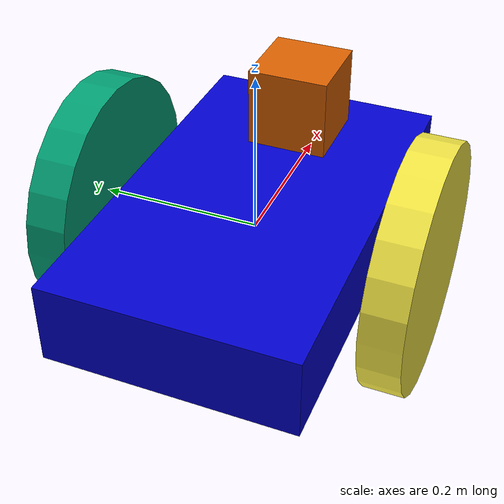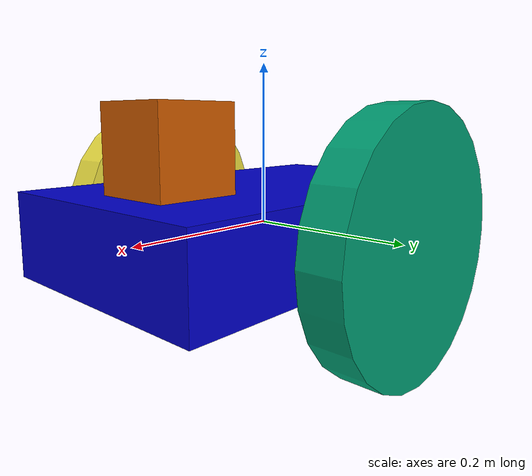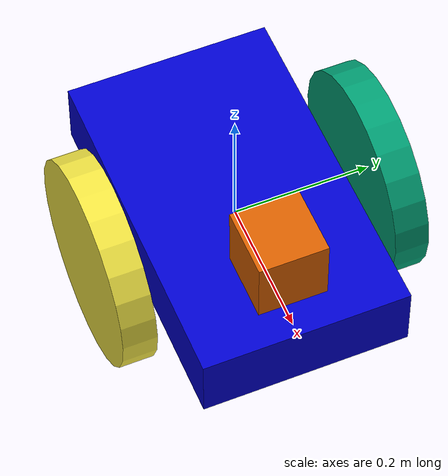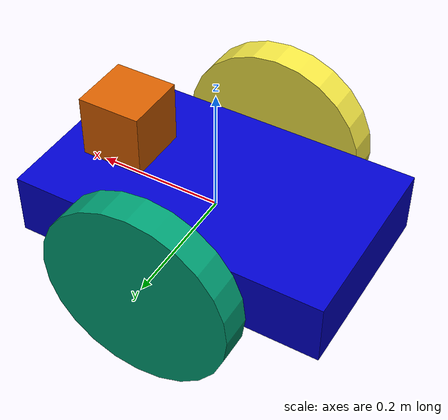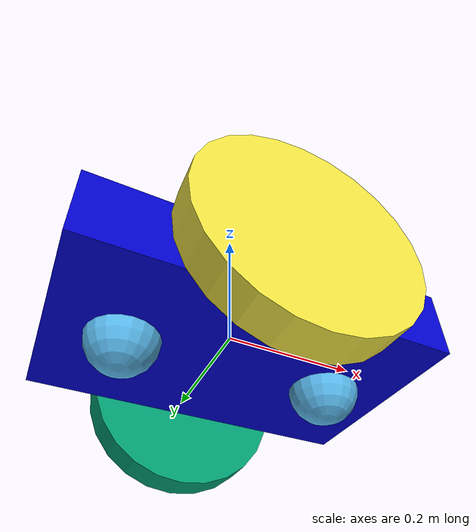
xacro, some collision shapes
<?xml version='1.0'?>

<robot name="my_robot" xmlns:xacro="http://www.ros.org/wiki/xacro">
<xacro:include filename="$(find my_robot)/urdf/my_robot.gazebo" />

  <material name="blue">
     <color rgba="0 0 0.8 1"/>
  </material>

  <link name="robot_footprint"></link>

  <joint name="robot_footprint_joint" type="fixed">
    <origin xyz="0 0 0" rpy="0 0 0" />
    <parent link="robot_footprint"/>
    <child link="chassis" />
  </joint>

  <link name='chassis'>
    <pose>0 0 0.1 0 0 0</pose>

    <inertial>
      <mass value="15.0"/>
      <origin xyz="0.0 0 0" rpy=" 0 0 0"/>
      <inertia
          ixx="0.1" ixy="0" ixz="0"
          iyy="0.1" iyz="0"
          izz="0.1"
      />
    </inertial>

    <collision name='collision'>
      <origin xyz="0 0 0" rpy=" 0 0 0"/>
      <geometry>
        <box size=".5 .3 .1"/>
      </geometry>
    </collision>

    <visual name='chassis_visual'>
      <origin xyz="0 0 0" rpy=" 0 0 0"/>
      <geometry>
        <box size=".5 .3 .1"/>
      </geometry>
      <material name="blue"/>
    </visual>

    <collision name='back_caster_collision'>
      <origin xyz="-0.15 0 -0.05" rpy=" 0 0 0"/>
      <geometry>
        <sphere radius="0.0499"/>
      </geometry>
    </collision>

    <visual name='back_caster_visual'>
      <origin xyz="-0.15 0 -0.05" rpy=" 0 0 0"/>
      <geometry>
        <sphere radius="0.05"/>
      </geometry>
    </visual>

    <collision name='front_caster_collision'>
      <origin xyz="0.15 0 -0.05" rpy=" 0 0 0"/>
      <geometry>
        <sphere radius="0.0499"/>
      </geometry>
    </collision>

    <visual name='front_caster_visual'>
      <origin xyz="0.15 0 -0.05" rpy=" 0 0 0"/>
      <geometry>
        <sphere radius="0.05"/>
      </geometry>
    </visual>

  </link>

  <link name='left_wheel'>
    <visual name='left_wheel_visual'>
      <origin xyz="0 0 0" rpy=" 0 1.5707 1.5707"/>
      <geometry>
        <cylinder length="0.05" radius="0.15"/>
      </geometry>
    </visual>

    <collision name='left_wheel_collision'>
      <origin xyz="0 0 0" rpy=" 0 1.5707 1.5707"/>
      <geometry>
        <cylinder length="0.05" radius="0.15"/>
      </geometry>
    </collision>

    <inertial>
      <mass value="5.0"/>
      <origin xyz="0.0 0 0" rpy=" 0 1.5707 1.5707"/>
      <inertia
          ixx="0.1" ixy="0" ixz="0"
          iyy="0.1" iyz="0"
          izz="0.1"
      />
    </inertial>
  </link>

  <joint type="continuous" name="left_wheel_hinge">
    <origin xyz="0 0.2 0" rpy="0 0 0"/>
    <child link="left_wheel"/>
    <parent link="chassis"/>
    <axis xyz="0 1 0" rpy="0 0 0"/>
    <limit effort="10000" velocity="1000"/>
    <dynamics damping="1.0" friction="1.0"/>
  </joint>

  <link name='right_wheel'>
    <visual name='right_wheel_visual'>
      <origin xyz="0 0 0" rpy=" 0 1.5707 1.5707"/>
      <geometry>
        <cylinder length="0.05" radius="0.15"/>
      </geometry>
    </visual>

    <collision name='right_wheel_collision'>
      <origin xyz="0 0 0" rpy=" 0 1.5707 1.5707"/>
      <geometry>
        <cylinder length="0.05" radius="0.15"/>
      </geometry>
    </collision>

    <inertial>
      <mass value="5.0"/>
      <origin xyz="0.0 0 0" rpy=" 0 1.5707 1.5707"/>
      <inertia
          ixx="0.1" ixy="0" ixz="0"
          iyy="0.1" iyz="0"
          izz="0.1"
      />
    </inertial>
  </link>

  <joint type="continuous" name="right_wheel_hinge">
    <origin xyz="0 -0.2 0" rpy="0 0 0"/>
    <child link="right_wheel"/>
    <parent link="chassis"/>
    <axis xyz="0 1 0" rpy="0 0 0"/>
    <limit effort="10000" velocity="1000"/>
    <dynamics damping="1.0" friction="1.0"/>
  </joint>

  <link name='camera'>
    <visual name='camera_visual'>
      <origin xyz="0 0 0" rpy=" 0 0 0"/>
      <geometry>
        <box size=".05 .05 .05"/>
      </geometry>
    </visual>

    <collision name='camera_collision'>
      <origin xyz="0 0 0" rpy=" 0 0 0"/>
      <geometry>
        <box size=".05 .05 .05"/>
      </geometry>
    </collision>

    <inertial>
      <mass value="0.1"/>
      <origin xyz="0.0 0 0" rpy=" 0 0 0"/>
      <inertia
          ixx="1e-6" ixy="0" ixz="0"
          iyy="1e-6" iyz="0"
          izz="1e-6"
      />
    </inertial>
  </link>

  <joint type="fixed" name="camera_joint">
    <origin xyz="0.2 0 0" rpy="0 0 0"/>
    <child link="camera"/>
    <parent link="chassis"/>
    <axis xyz="0 1 0" rpy="0 0 0"/>
  </joint>

  <link name='hokuyo'>
    <visual name='hokuyo_visual'>
      <origin xyz="0 0 0" rpy=" 0 0 0"/>
      <geometry>
        <mesh filename="package://my_robot/meshes/hokuyo.dae"/>
      </geometry>
    </visual>

    <collision name='camera_collision'>
      <origin xyz="0 0 0" rpy=" 0 0 0"/>
      <geometry>
        <box size=".1 .1 .1"/>
      </geometry>
    </collision>

    <inertial>
      <mass value="1e-5"/>
      <origin xyz="0.0 0 0" rpy=" 0 0 0"/>
      <inertia
          ixx="1e-6" ixy="0" ixz="0"
          iyy="1e-6" iyz="0"
          izz="1e-6"
      />
    </inertial>
  </link>

  <joint type="fixed" name="hokuyo_joint">
    <origin xyz="0.15 0 0.1" rpy="0 0 0"/>
    <child link="hokuyo"/>
    <parent link="chassis"/>
    <axis xyz="0 1 0" rpy="0 0 0"/>
  </joint>

  <gazebo reference="camera">
    <material>Gazebo/Red</material>
  </gazebo>

</robot>
